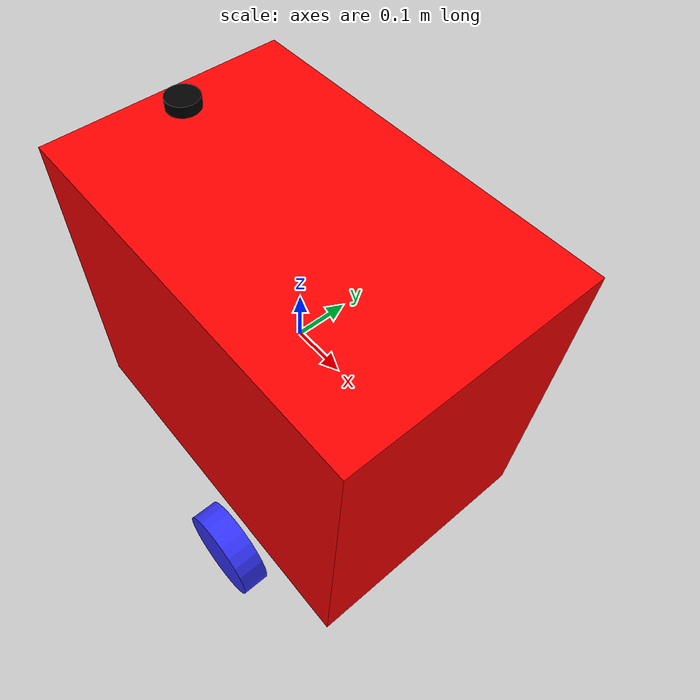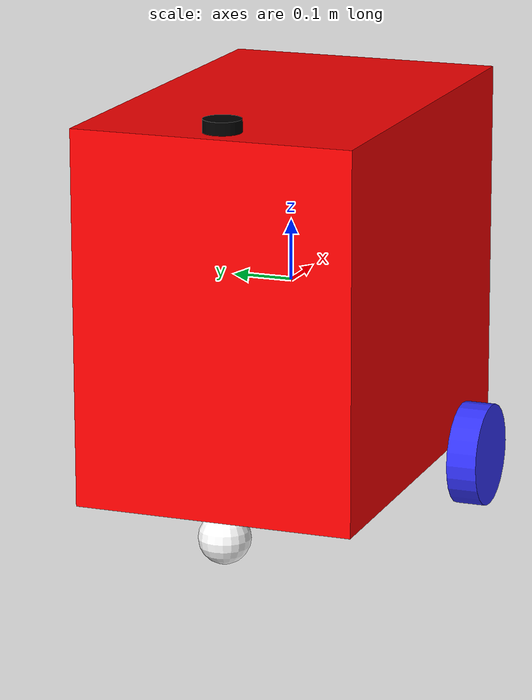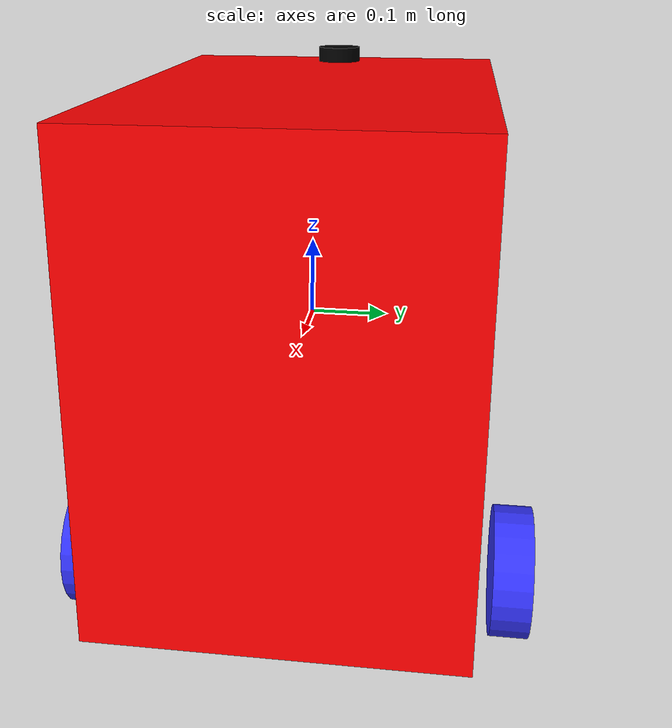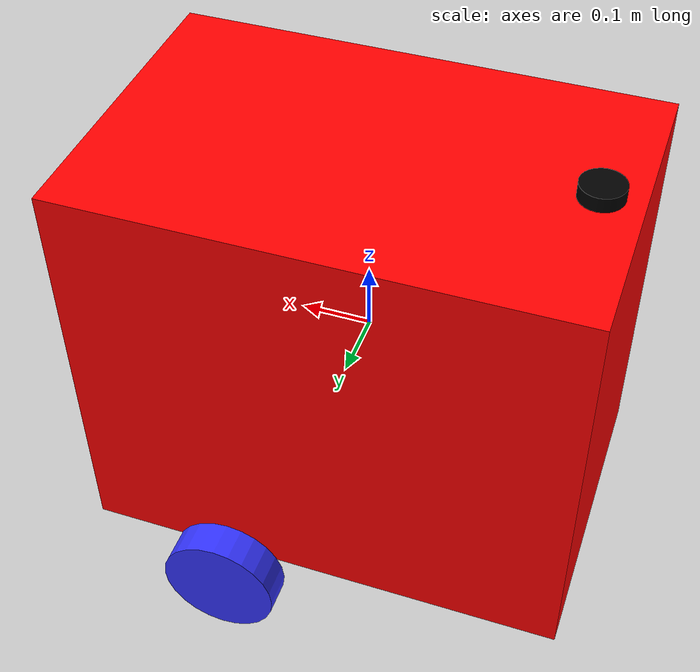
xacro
<?xml version="1.0"?>
<robot xmlns:xacro="http://www.ros.org/wiki/xacro" name="AXLR">
    <xacro:include filename="core.urdf.xacro"/>
    <xacro:include filename="imu.urdf.xacro"/>
    <xacro:include filename="lidar.urdf.xacro"/>
    <xacro:include filename="gazebo_properties.urdf.xacro"/>
    <xacro:include filename="jidenna_ros2_control.urdf.xacro"/>
</robot>

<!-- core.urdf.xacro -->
<robot xmlns:xacro="http://www.ros.org/wiki/xacro" >

    <xacro:arg name="is_sim" default="true"/>

    <xacro:include filename="inertia_macro.urdf.xacro"/>

    <xacro:property name="chassis_width" value="0.46"/>
    <xacro:property name="chassis_length" value="0.714"/>
    <xacro:property name="chassis_height" value="0.61"/>
    <xacro:property name="chassis_mass" value="8"/>
    <xacro:property name="wheel_radius" value="0.085"/>
    <xacro:property name="wheel_thickness" value="0.05"/>
    <xacro:property name="wheel_mass" value="1.0"/>
    <xacro:property name="wheel_offset_x" value="0.13"/>
    <xacro:property name="wheel_offset_y" value="0.017"/>
    <xacro:property name="wheel_offset_z" value="0.02"/>
    <xacro:property name="caster_wheel_radius" value="0.014"/>
    <xacro:property name="caster_wheel_mass" value="2.5"/>
    <xacro:property name="caster_wheel_offset_x" value="0.3"/>
    <xacro:property name="pi_math" value="3.14159265359"/>
    <xacro:property name="caster_wheel_offset_z" value="${wheel_offset_z - wheel_radius + caster_wheel_radius}"/>

    <xacro:arg name="is_sim" default="true"/>
    <xacro:arg name="controllers_yaml" default=""/>

    <material name="blue">
        <color rgba="0.2 0.2 1 1"/>
    </material>

    <material name="red">
        <color rgba="1 0 0 1"/>
    </material>

    <material name="white">
        <color rgba="1 1 1 1"/>
    </material>

    <material name="black">
        <color rgba="0 0 0 1"/>
    </material>

    <!-- BASE LINK -->

    <link name="base_link">

        <visual>
            <origin xyz="0 0 0" rpy="0 0 0"/>
            <geometry>
                <box size="${chassis_length} ${chassis_width} ${chassis_height}"/>
            </geometry>
            <material name="red"/>
        </visual>
        <collision>
            <origin xyz="0 0 0" rpy="0 0 0"/>
            <geometry>
                <box size="${chassis_length} ${chassis_width} ${chassis_height}"/>
            </geometry>
        </collision>
        <xacro:inertial_box mass="${chassis_mass}" x="${chassis_length}" y="${chassis_width}" z="${chassis_height}">
            <origin xyz="0 0 0" rpy="0 0 0"/>
        </xacro:inertial_box>

    </link>

    <!-- BASE_FOOTPRINT LINK -->

    <joint name="base_footprint_joint" type="fixed">
        <parent link="base_link"/>
        <child link="base_footprint"/>
        <origin xyz="0 0 ${-chassis_height/2 - wheel_radius}" rpy="0 0 0"/>
    </joint>

    <link name="base_footprint">
    </link>

    <!-- LEFT WHEEL LINK -->

    <joint name="left_wheel_joint" type="continuous">
        <parent link="base_link"/>
        <child link="left_wheel"/>
        <origin xyz="${wheel_offset_x} ${chassis_width/2 + wheel_thickness} ${-chassis_height/2}" rpy="-${pi_math/2} 0 0" />
        <axis xyz="0 0 1"/>
    </joint>

    <link name="left_wheel">
        <visual>
            <geometry>
                <cylinder radius="${wheel_radius}" length="${wheel_thickness}"/>
            </geometry>
            <material name="blue"/>
        </visual>
        <collision>
            <geometry>
                <sphere radius="${wheel_radius}"/>
            </geometry>
        </collision>
        <xacro:inertial_cylinder mass="${wheel_mass}" length="${wheel_thickness}" radius="${wheel_radius}">
            <origin xyz="0 0 0" rpy="0 0 0"/>
        </xacro:inertial_cylinder>
    </link>

    <!-- RIGHT WHEEL LINK -->

    <joint name="right_wheel_joint" type="continuous">
        <parent link="base_link"/>
        <child link="right_wheel"/>
        <origin xyz="${wheel_offset_x} -${chassis_width/2 + wheel_thickness} ${-chassis_height/2}" rpy="-${pi_math/2} 0 0" />
        <axis xyz="0 0 1"/>
    </joint>

    <link name="right_wheel">
        <visual>
            <geometry>
                <cylinder radius="${wheel_radius}" length="${wheel_thickness}"/>
            </geometry>
            <material name="blue"/>
        </visual>
        <collision>
            <geometry>
                <sphere radius="${wheel_radius}"/>
            </geometry>
        </collision>
        <xacro:inertial_cylinder mass="${wheel_mass}" length="${wheel_thickness}" radius="${wheel_radius}">
            <origin xyz="0 0 0" rpy="0 0 0"/>
        </xacro:inertial_cylinder>
    </link>

    <!-- CASTER WHEEL LINK -->

    <joint name="caster_wheel_joint" type="fixed">
        <parent link="base_link"/>
        <child link="caster_wheel"/>
        <origin xyz="${-caster_wheel_offset_x} 0 ${-chassis_height/2 - wheel_radius/2}"/>
    </joint>

    <link name="caster_wheel">
        <visual>
            <geometry>
                <sphere radius="${wheel_radius/2}"/>
            </geometry>
            <material name="white"/>
        </visual>
        <collision>
            <geometry>
                <sphere radius="${wheel_radius/2}"/>
            </geometry>
        </collision>
        <xacro:inertial_sphere mass="${caster_wheel_mass}" radius="${wheel_radius/2}">
            <origin xyz="0 0 0" rpy="0 0 0"/>
        </xacro:inertial_sphere>
    </link>

</robot>

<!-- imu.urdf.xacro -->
<robot xmlns:xacro="http://www.ros.org/wiki/xacro">

    <link name="imu_link">
        <visual>
            <origin xyz="0.0 0.0 0.0" rpy="0.0 0.0 0.0"/>
            <geometry>
                <box size="0.02 0.01 0.001"/>
            </geometry>
            <material name="black"/>
        </visual>
        <collision>
            <origin xyz="0.0 0.0 0.0" rpy="0.0 0.0 0.0"/>
            <geometry>
                <box size="0.02 0.01 0.001"/>
            </geometry>
            <material name="black"/>
        </collision>
        <xacro:inertial_box mass="0.01" x="0.02" y="0.01" z="0.001">
            <origin xyz="0 0 0" rpy="0 0 0"/>
        </xacro:inertial_box>
    </link>

    <joint name="imu_joint" type="fixed">
        <parent link="base_link"/>
        <child link="imu_link"/>
        <origin xyz="${wheel_offset_x} 0 ${-chassis_height/2}" rpy="0 0 0" />
    </joint>

</robot>

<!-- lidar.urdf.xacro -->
<robot xmlns:xacro="http://www.ros.org/wiki/xacro" >

    <joint name="laser_joint" type="fixed">
        <parent link="base_link"/>
        <child link="laser_frame"/>
        <origin xyz="${-caster_wheel_offset_x} 0 ${chassis_height/2 + 0.0105}" rpy="0 0 0"/>
    </joint>

    <link name="laser_frame">
        <visual>
            <geometry>
                <cylinder radius="0.031" length="0.021"/>
            </geometry>
            <material name="black"/>
        </visual>
        <collision>
            <geometry>
                <cylinder radius="0.031" length="0.021"/>
            </geometry>
        </collision>
        <xacro:inertial_cylinder mass="0.2" length="0.021" radius="0.031">
            <origin xyz="0 0 0" rpy="0 0 0"/>
        </xacro:inertial_cylinder>
    </link>

    <gazebo reference="laser_frame">
        <material>Gazebo/Black</material>

        <sensor name="laser" type="ray">
            <pose> 0 0 0 0 0 0 </pose>
            <visualize>true</visualize>
            <update_rate>10</update_rate>
            <ray>
                <scan>
                    <horizontal>
                        <samples>360</samples>
                        <min_angle>-3.14</min_angle>
                        <max_angle>3.14</max_angle>
                    </horizontal>
                </scan>
                <range>
                    <min>0.3</min>
                    <max>8</max>
                </range>
            </ray>
            <plugin name="laser_controller" filename="libgazebo_ros_ray_sensor.so">
                <ros>
                    <argument>~/out:=scan</argument>
                </ros>
                <output_type>sensor_msgs/LaserScan</output_type>
                <frame_name>laser_frame</frame_name>
            </plugin>
        </sensor>
    </gazebo>

</robot>
